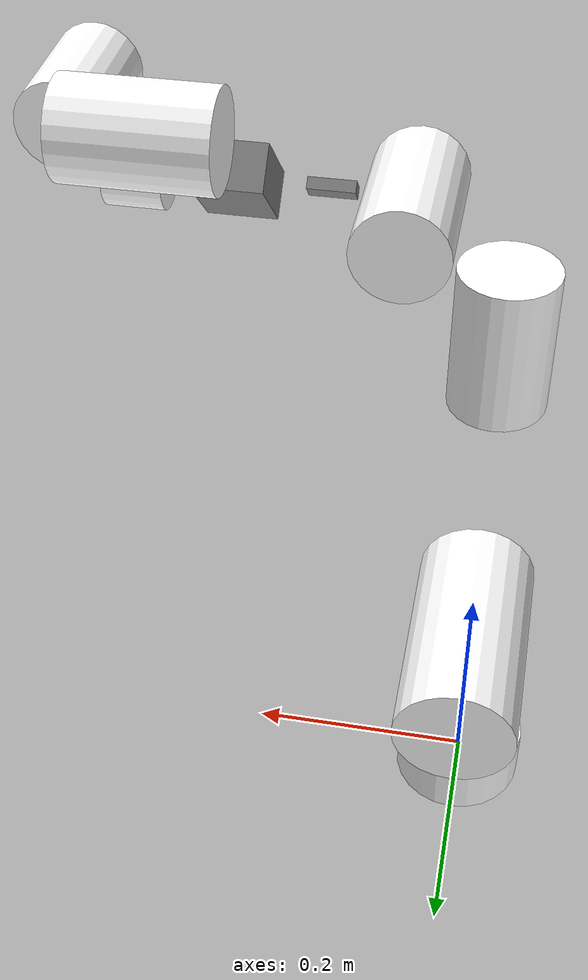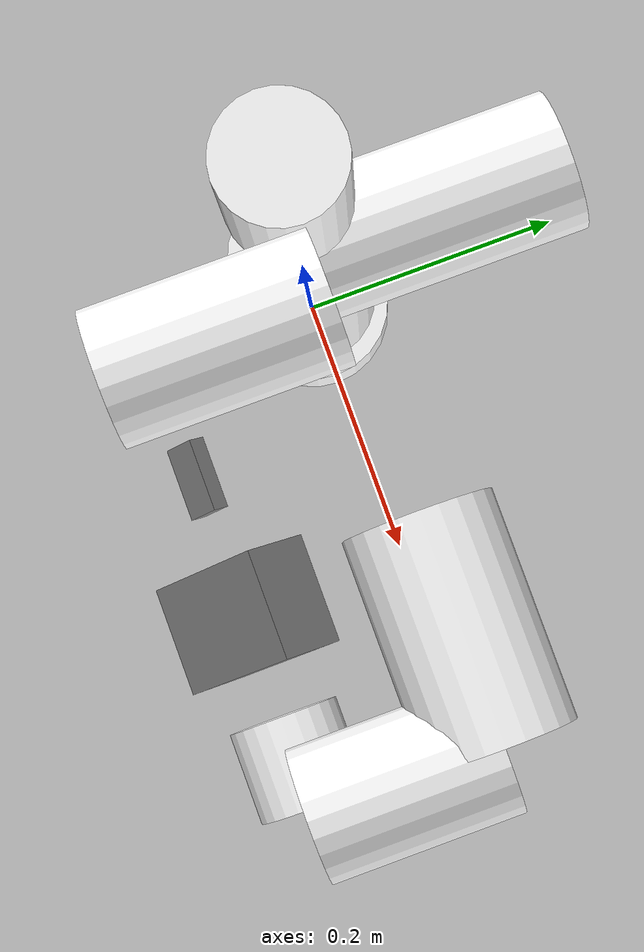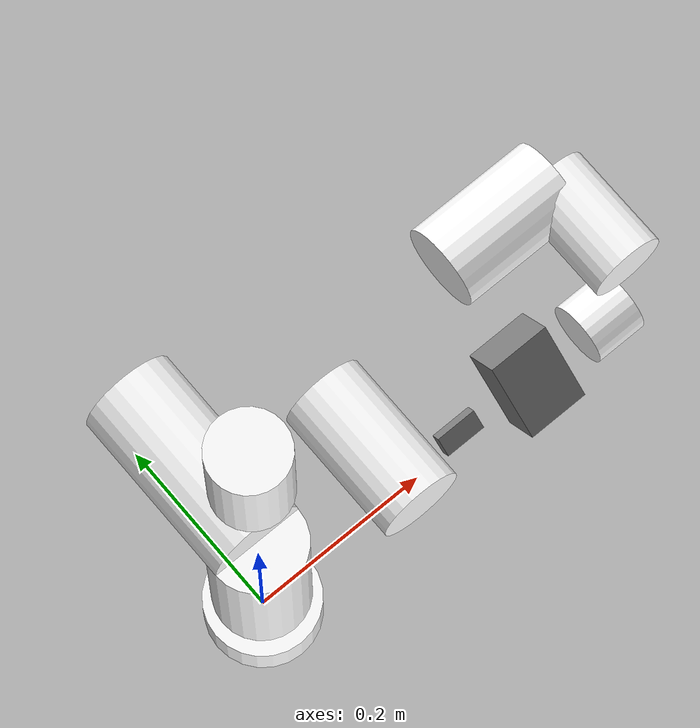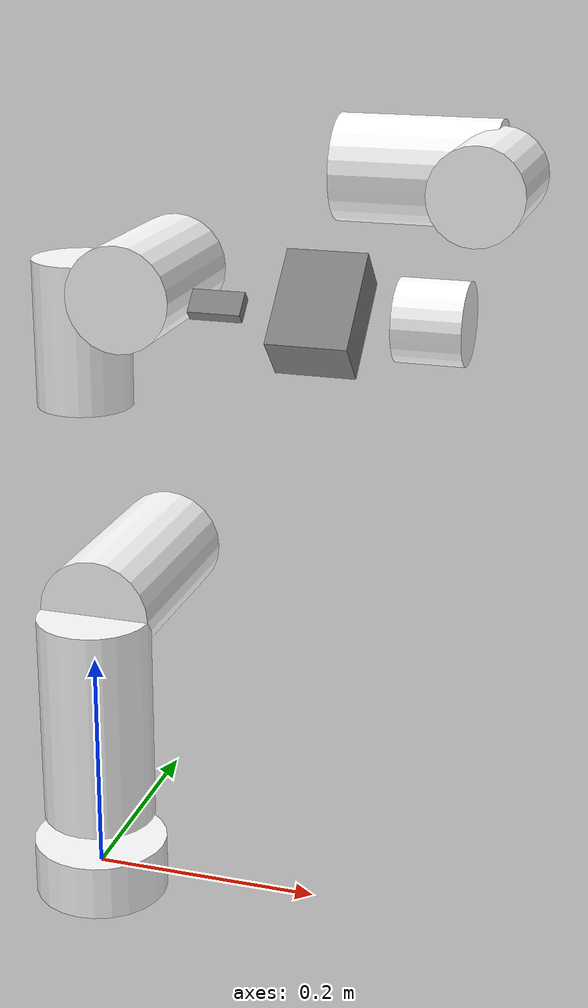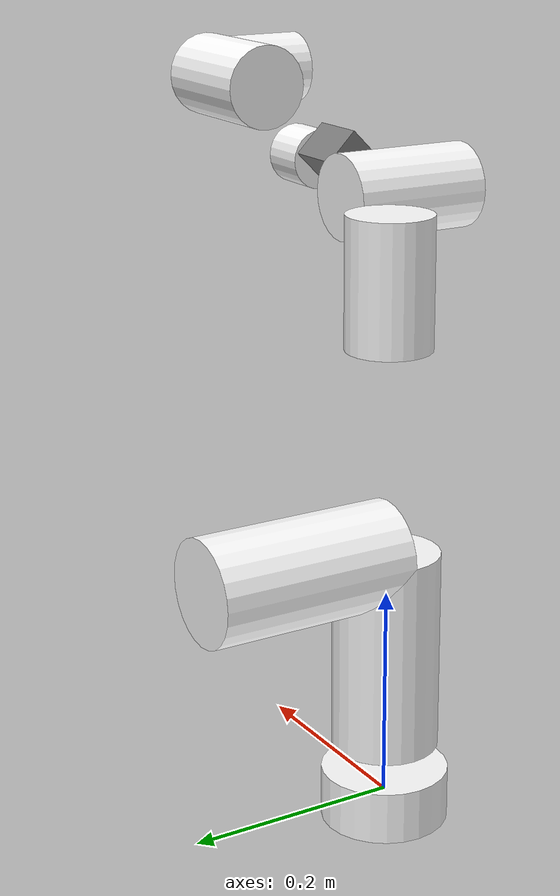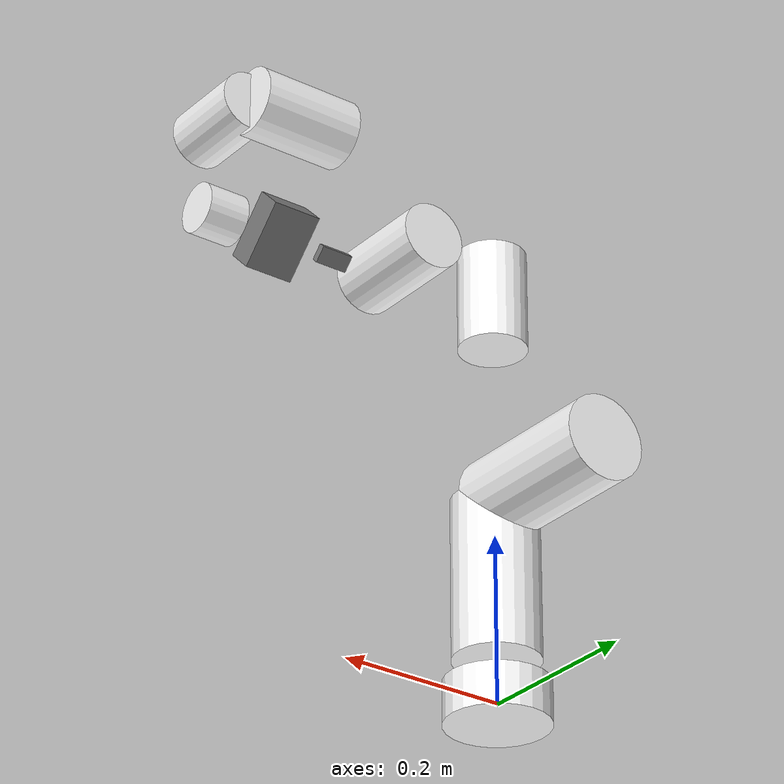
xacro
<?xml version="1.0"?>
<robot xmlns:xacro="http://www.ros.org/wiki/xacro" name="panda">

  <xacro:arg name="use_sim_time" default="true"/>

  <!-- Materials -->
  <material name="panda_white">
    <color rgba="1.0 1.0 1.0 1.0"/>
  </material>
  <material name="panda_grey">
    <color rgba="0.5 0.5 0.5 1.0"/>
  </material>

  <!-- World link for fixed base -->
  <link name="world"/>

  <!-- Base link -->
  <link name="panda_link0">
    <visual>
      <geometry>
        <cylinder length="0.05" radius="0.06"/>
      </geometry>
      <material name="panda_white"/>
    </visual>
    <collision>
      <geometry>
        <cylinder length="0.05" radius="0.06"/>
      </geometry>
    </collision>
    <inertial>
      <mass value="2.5"/>
      <inertia ixx="0.01" ixy="0" ixz="0" iyy="0.01" iyz="0" izz="0.01"/>
    </inertial>
  </link>

  <joint name="panda_joint_world" type="fixed">
    <parent link="world"/>
    <child link="panda_link0"/>
    <origin xyz="0 0 0" rpy="0 0 0"/>
  </joint>

  <!-- Arm links and joints (simplified geometry) -->
  <xacro:macro name="panda_link" params="name length radius mass">
    <link name="${name}">
      <visual>
        <geometry>
          <cylinder length="${length}" radius="${radius}"/>
        </geometry>
        <origin xyz="0 0 ${length/2}" rpy="0 0 0"/>
        <material name="panda_white"/>
      </visual>
      <collision>
        <geometry>
          <cylinder length="${length}" radius="${radius}"/>
        </geometry>
        <origin xyz="0 0 ${length/2}" rpy="0 0 0"/>
      </collision>
      <inertial>
        <mass value="${mass}"/>
        <origin xyz="0 0 ${length/2}" rpy="0 0 0"/>
        <inertia ixx="${mass*0.01}" ixy="0" ixz="0" iyy="${mass*0.01}" iyz="0" izz="${mass*0.005}"/>
      </inertial>
    </link>
  </xacro:macro>

  <xacro:macro name="panda_joint" params="name parent child xyz rpy axis lower upper effort velocity">
    <joint name="${name}" type="revolute">
      <parent link="${parent}"/>
      <child link="${child}"/>
      <origin xyz="${xyz}" rpy="${rpy}"/>
      <axis xyz="${axis}"/>
      <limit lower="${lower}" upper="${upper}" effort="${effort}" velocity="${velocity}"/>
      <dynamics damping="0.5" friction="0.1"/>
    </joint>
  </xacro:macro>

  <!-- Link 1 -->
  <xacro:panda_link name="panda_link1" length="0.1915" radius="0.05" mass="2.74"/>
  <xacro:panda_joint name="panda_joint1" parent="panda_link0" child="panda_link1"
                     xyz="0 0 0.05" rpy="0 0 0" axis="0 0 1"
                     lower="-2.8973" upper="2.8973" effort="87" velocity="2.175"/>

  <!-- Link 2 -->
  <xacro:panda_link name="panda_link2" length="0.1915" radius="0.05" mass="2.74"/>
  <xacro:panda_joint name="panda_joint2" parent="panda_link1" child="panda_link2"
                     xyz="0 0 0.1915" rpy="${-pi/2} 0 0" axis="0 0 1"
                     lower="-1.7628" upper="1.7628" effort="87" velocity="2.175"/>

  <!-- Link 3 -->
  <xacro:panda_link name="panda_link3" length="0.1215" radius="0.04" mass="2.38"/>
  <xacro:panda_joint name="panda_joint3" parent="panda_link2" child="panda_link3"
                     xyz="0 -0.1915 0" rpy="${pi/2} 0 0" axis="0 0 1"
                     lower="-2.8973" upper="2.8973" effort="87" velocity="2.175"/>

  <!-- Link 4 -->
  <xacro:panda_link name="panda_link4" length="0.1315" radius="0.04" mass="2.38"/>
  <xacro:panda_joint name="panda_joint4" parent="panda_link3" child="panda_link4"
                     xyz="0.0825 0 0.1215" rpy="${pi/2} 0 0" axis="0 0 1"
                     lower="-3.0718" upper="-0.0698" effort="87" velocity="2.175"/>

  <!-- Link 5 -->
  <xacro:panda_link name="panda_link5" length="0.1215" radius="0.04" mass="2.38"/>
  <xacro:panda_joint name="panda_joint5" parent="panda_link4" child="panda_link5"
                     xyz="-0.0825 0.1315 0" rpy="${-pi/2} 0 0" axis="0 0 1"
                     lower="-2.8973" upper="2.8973" effort="12" velocity="2.610"/>

  <!-- Link 6 -->
  <xacro:panda_link name="panda_link6" length="0.1015" radius="0.035" mass="1.80"/>
  <xacro:panda_joint name="panda_joint6" parent="panda_link5" child="panda_link6"
                     xyz="0 0 0.1215" rpy="${pi/2} 0 0" axis="0 0 1"
                     lower="-0.0175" upper="3.7525" effort="12" velocity="2.610"/>

  <!-- Link 7 -->
  <xacro:panda_link name="panda_link7" length="0.05" radius="0.03" mass="0.50"/>
  <xacro:panda_joint name="panda_joint7" parent="panda_link6" child="panda_link7"
                     xyz="0.088 0 0.1015" rpy="${pi/2} 0 0" axis="0 0 1"
                     lower="-2.8973" upper="2.8973" effort="12" velocity="2.610"/>

  <!-- End effector link -->
  <link name="panda_link8">
    <inertial>
      <mass value="0.1"/>
      <inertia ixx="0.001" ixy="0" ixz="0" iyy="0.001" iyz="0" izz="0.001"/>
    </inertial>
  </link>
  <joint name="panda_joint8" type="fixed">
    <parent link="panda_link7"/>
    <child link="panda_link8"/>
    <origin xyz="0 0 0.107" rpy="0 0 0"/>
  </joint>

  <!-- Hand (gripper) -->
  <link name="panda_hand">
    <visual>
      <geometry>
        <box size="0.04 0.08 0.06"/>
      </geometry>
      <material name="panda_grey"/>
    </visual>
    <collision>
      <geometry>
        <box size="0.04 0.08 0.06"/>
      </geometry>
    </collision>
    <inertial>
      <mass value="0.73"/>
      <inertia ixx="0.001" ixy="0" ixz="0" iyy="0.001" iyz="0" izz="0.001"/>
    </inertial>
  </link>
  <joint name="panda_hand_joint" type="fixed">
    <parent link="panda_link8"/>
    <child link="panda_hand"/>
    <origin xyz="0 0 0" rpy="0 0 ${-pi/4}"/>
  </joint>

  <!-- Finger links -->
  <link name="panda_leftfinger">
    <visual>
      <geometry>
        <box size="0.01 0.02 0.04"/>
      </geometry>
      <origin xyz="0 0 0.02"/>
      <material name="panda_grey"/>
    </visual>
    <collision>
      <geometry>
        <box size="0.01 0.02 0.04"/>
      </geometry>
      <origin xyz="0 0 0.02"/>
    </collision>
    <inertial>
      <mass value="0.015"/>
      <inertia ixx="0.0001" ixy="0" ixz="0" iyy="0.0001" iyz="0" izz="0.0001"/>
    </inertial>
  </link>
  <joint name="panda_finger_joint1" type="prismatic">
    <parent link="panda_hand"/>
    <child link="panda_leftfinger"/>
    <origin xyz="0 0 0.0584" rpy="0 0 0"/>
    <axis xyz="0 1 0"/>
    <limit lower="0.0" upper="0.04" effort="20" velocity="0.2"/>
  </joint>

  <link name="panda_rightfinger">
    <visual>
      <geometry>
        <box size="0.01 0.02 0.04"/>
      </geometry>
      <origin xyz="0 0 0.02"/>
      <material name="panda_grey"/>
    </visual>
    <collision>
      <geometry>
        <box size="0.01 0.02 0.04"/>
      </geometry>
      <origin xyz="0 0 0.02"/>
    </collision>
    <inertial>
      <mass value="0.015"/>
      <inertia ixx="0.0001" ixy="0" ixz="0" iyy="0.0001" iyz="0" izz="0.0001"/>
    </inertial>
  </link>
  <joint name="panda_finger_joint2" type="prismatic">
    <parent link="panda_hand"/>
    <child link="panda_rightfinger"/>
    <origin xyz="0 0 0.0584" rpy="0 0 0"/>
    <axis xyz="0 -1 0"/>
    <limit lower="0.0" upper="0.04" effort="20" velocity="0.2"/>
    <mimic joint="panda_finger_joint1"/>
  </joint>

  <!-- ros2_control hardware interface -->
  <ros2_control name="GazeboSystem" type="system">
    <hardware>
      <plugin>gz_ros2_control/GazeboSimSystem</plugin>
    </hardware>
    <joint name="panda_joint1">
      <command_interface name="position"/>
      <state_interface name="position"/>
      <state_interface name="velocity"/>
      <state_interface name="effort"/>
    </joint>
    <joint name="panda_joint2">
      <command_interface name="position"/>
      <state_interface name="position"/>
      <state_interface name="velocity"/>
      <state_interface name="effort"/>
    </joint>
    <joint name="panda_joint3">
      <command_interface name="position"/>
      <state_interface name="position"/>
      <state_interface name="velocity"/>
      <state_interface name="effort"/>
    </joint>
    <joint name="panda_joint4">
      <command_interface name="position"/>
      <state_interface name="position"/>
      <state_interface name="velocity"/>
      <state_interface name="effort"/>
    </joint>
    <joint name="panda_joint5">
      <command_interface name="position"/>
      <state_interface name="position"/>
      <state_interface name="velocity"/>
      <state_interface name="effort"/>
    </joint>
    <joint name="panda_joint6">
      <command_interface name="position"/>
      <state_interface name="position"/>
      <state_interface name="velocity"/>
      <state_interface name="effort"/>
    </joint>
    <joint name="panda_joint7">
      <command_interface name="position"/>
      <state_interface name="position"/>
      <state_interface name="velocity"/>
      <state_interface name="effort"/>
    </joint>
    <joint name="panda_finger_joint1">
      <command_interface name="position"/>
      <state_interface name="position"/>
      <state_interface name="velocity"/>
      <state_interface name="effort"/>
    </joint>
  </ros2_control>

  <!-- Gazebo ros2_control plugin -->
  <gazebo>
    <plugin filename="gz_ros2_control-system" name="gz_ros2_control::GazeboSimROS2ControlPlugin">
      <parameters>$(find ldos_harness)/config/panda_controllers.yaml</parameters>
    </plugin>
  </gazebo>

</robot>
